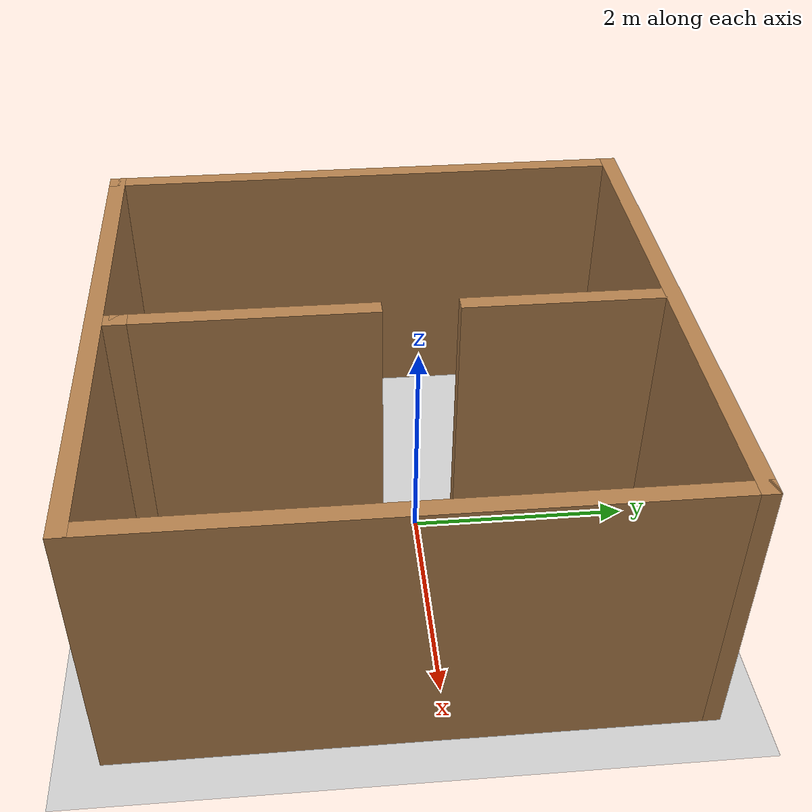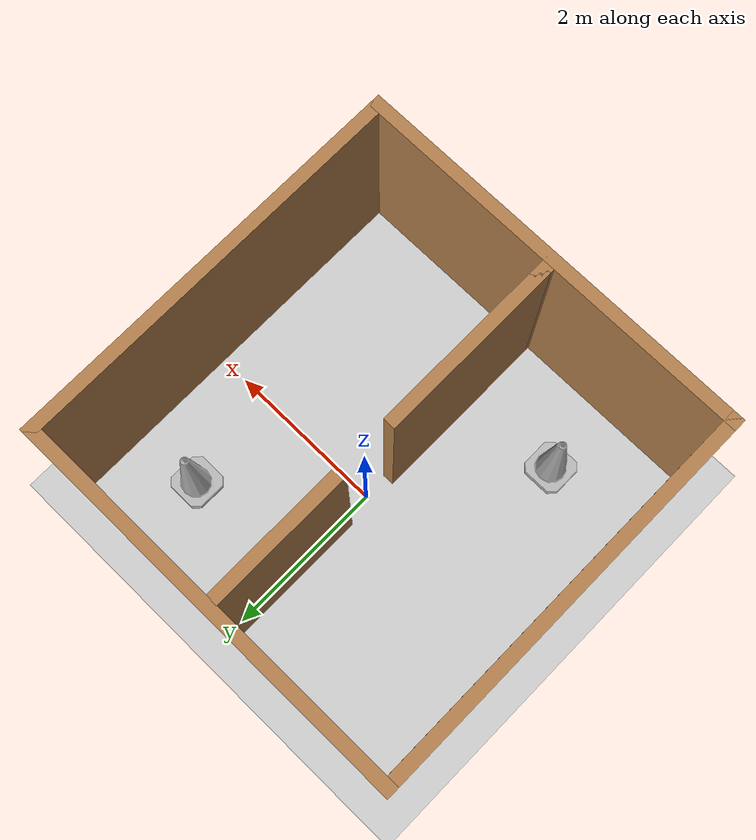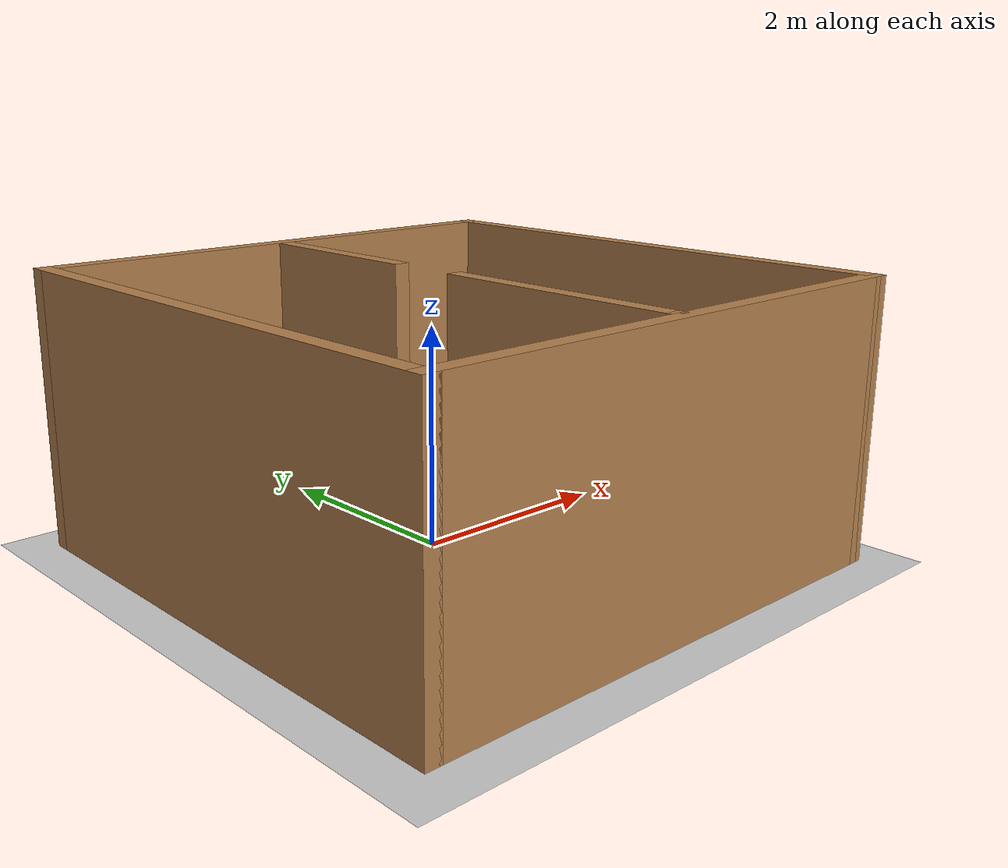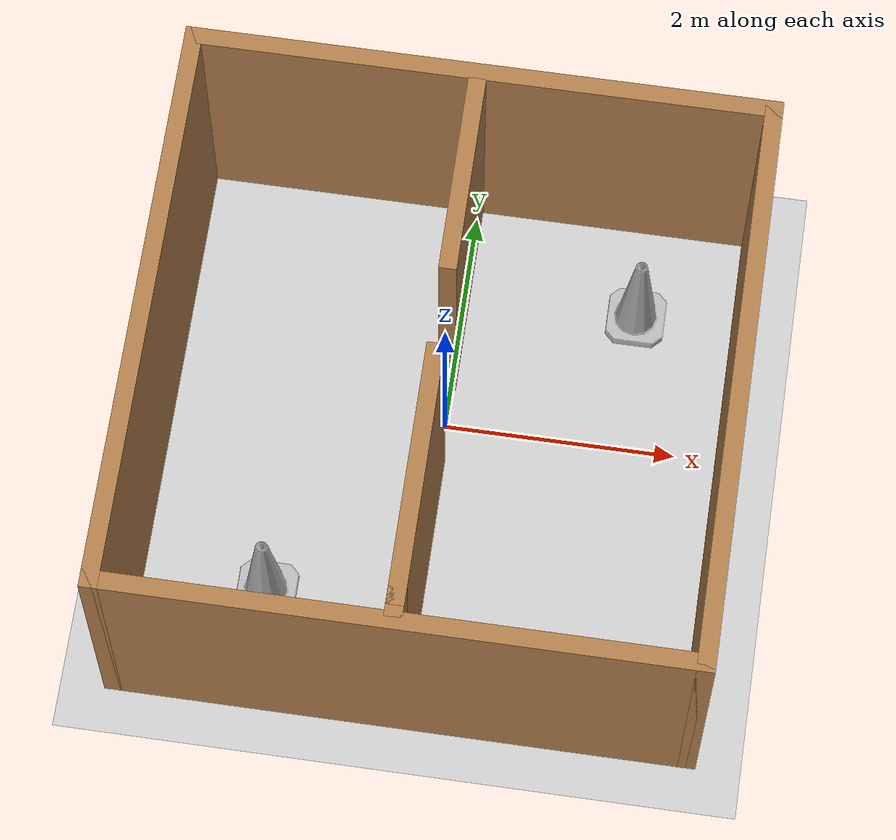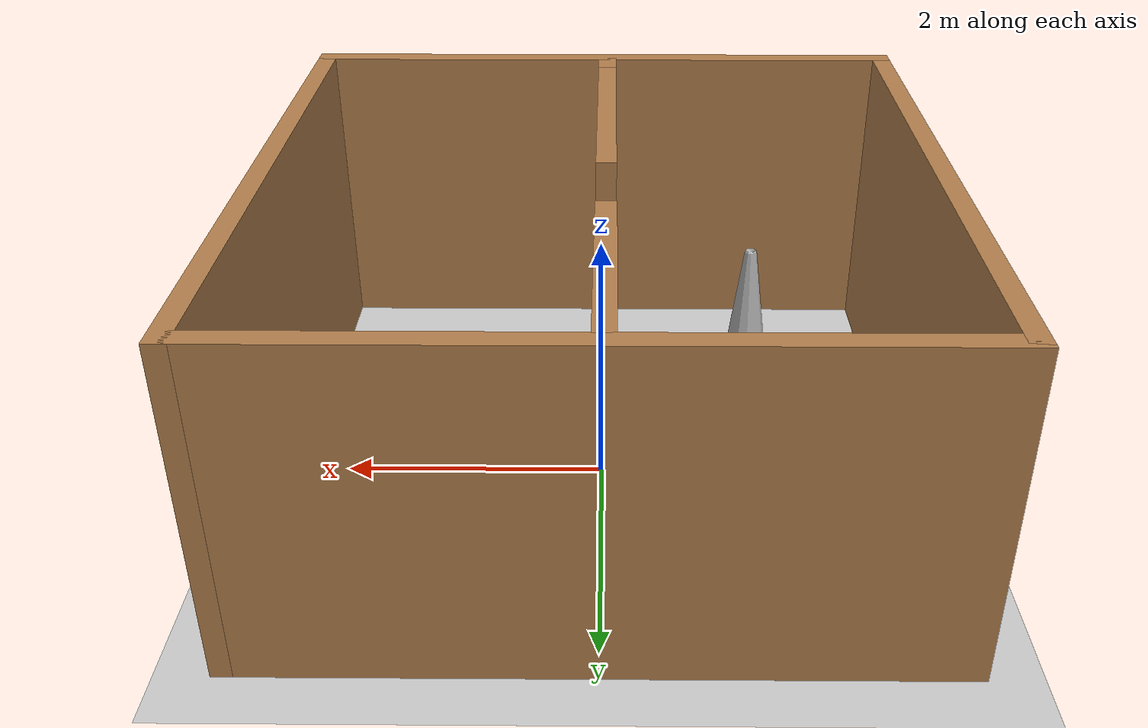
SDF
<sdf version="1.7">
 <world name="default">
  <scene><ambient>0.4 0.4 0.4 1</ambient><background>0.7 0.7 0.7 1</background><shadows>1</shadows></scene>
  <light name="sun" type="directional">
   <pose>0 0 10 0 -0 0</pose>
   <diffuse>0.8 0.8 0.8 1</diffuse>
   <specular>0.2 0.2 0.2 1</specular>
   <attenuation>
    <range>1000</range>
    <constant>0.9</constant>
    <linear>0.01</linear>
    <quadratic>0.001</quadratic>
   </attenuation>
   <direction>-0.5 0.1 -0.9</direction>
   <spot><inner_angle>0</inner_angle><outer_angle>0</outer_angle><falloff>0</falloff></spot>
  </light>
  <model name="ground_plane">
   <static>1</static>
   <link name="link">
    <collision name="collision">
     <geometry><plane><normal>0 0 1</normal><size>100 100</size></plane></geometry>
     <surface>
      <contact><collide_bitmask>65535</collide_bitmask></contact>
      <friction><ode><mu>100</mu><mu2>50</mu2></ode></friction>
     </surface>
    </collision>
    <visual name="visual">
     <cast_shadows>0</cast_shadows>
     <geometry><plane><normal>0 0 1</normal><size>100 100</size></plane></geometry>
     <material>
      <script><uri>file://media/materials/scripts/gazebo.material</uri><name>Gazebo/Grey</name></script>
     </material>
    </visual>
   </link>
  </model>
  <physics type="ode">
   <real_time_update_rate>1000</real_time_update_rate>
   <max_step_size>0.001</max_step_size>
   <real_time_factor>1</real_time_factor>
   <ode>
    <solver>
     <type>quick</type>
     <iters>150</iters>
     <precon_iters>0</precon_iters>
     <sor>1.4</sor>
     <use_dynamic_moi_rescaling>1</use_dynamic_moi_rescaling>
    </solver>
    <constraints>
     <cfm>1e-05</cfm>
     <erp>0.2</erp>
     <contact_max_correcting_vel>2000</contact_max_correcting_vel>
     <contact_surface_layer>0.01</contact_surface_layer>
    </constraints>
   </ode>
  </physics>
  <gravity>0 0 -9.8</gravity>
  <magnetic_field>6e-06 2.3e-05 -4.2e-05</magnetic_field>
  <atmosphere type="adiabatic"/>
  <spherical_coordinates>
   <surface_model>EARTH_WGS84</surface_model>
   <latitude_deg>0</latitude_deg>
   <longitude_deg>0</longitude_deg>
   <elevation>0</elevation>
   <heading_deg>0</heading_deg>
  </spherical_coordinates>
  <model name="Deneme_Model">
   <pose>0.002692 -0.107682 0 0 -0 0</pose>
   <link name="Wall_1">
    <collision name="Wall_1_Collision">
     <geometry><box><size>5 0.15 2.5</size></box></geometry>
     <pose>0 0 1.25 0 -0 0</pose>
    </collision>
    <visual name="Wall_1_Visual">
     <pose>0 0 1.25 0 -0 0</pose>
     <geometry><box><size>5 0.15 2.5</size></box></geometry>
     <material>
      <script><uri>file://media/materials/scripts/gazebo.material</uri><name>Gazebo/Wood</name></script>
      <ambient>1 1 1 1</ambient>
     </material>
     <meta><layer>0</layer></meta>
    </visual>
    <pose>0 -2.5825 0 0 -0 0</pose>
   </link>
   <link name="Wall_14">
    <collision name="Wall_14_Collision">
     <geometry><box><size>2.25 0.15 2.5</size></box></geometry>
     <pose>0 0 1.25 0 -0 0</pose>
    </collision>
    <visual name="Wall_14_Visual">
     <pose>0 0 1.25 0 -0 0</pose>
     <geometry><box><size>2.25 0.15 2.5</size></box></geometry>
     <material>
      <script><uri>file://media/materials/scripts/gazebo.material</uri><name>Gazebo/Wood</name></script>
      <ambient>1 1 1 1</ambient>
     </material>
     <meta><layer>0</layer></meta>
    </visual>
    <pose>-0.033 -1.3325 0 0 -0 -1.5708</pose>
   </link>
   <link name="Wall_15">
    <collision name="Wall_15_Collision">
     <geometry><box><size>0.25 0.15 2.5</size></box></geometry>
     <pose>0 0 1.25 0 -0 0</pose>
    </collision>
    <visual name="Wall_15_Visual">
     <pose>0 0 1.25 0 -0 0</pose>
     <geometry><box><size>0.25 0.15 2.5</size></box></geometry>
     <material>
      <script><uri>file://media/materials/scripts/gazebo.material</uri><name>Gazebo/Wood</name></script>
      <ambient>1 1 1 1</ambient>
     </material>
     <meta><layer>0</layer></meta>
    </visual>
    <pose>-0.033 -2.4325 0 0 -0 -1.5708</pose>
   </link>
   <link name="Wall_2">
    <collision name="Wall_2_Collision">
     <geometry><box><size>5 0.15 2.5</size></box></geometry>
     <pose>0 0 1.25 0 -0 0</pose>
    </collision>
    <visual name="Wall_2_Visual">
     <pose>0 0 1.25 0 -0 0</pose>
     <geometry><box><size>5 0.15 2.5</size></box></geometry>
     <material>
      <script><uri>file://media/materials/scripts/gazebo.material</uri><name>Gazebo/Wood</name></script>
      <ambient>1 1 1 1</ambient>
     </material>
     <meta><layer>0</layer></meta>
    </visual>
    <pose>2.425 -0.1575 0 0 -0 1.5708</pose>
   </link>
   <link name="Wall_3">
    <collision name="Wall_3_Collision">
     <geometry><box><size>5 0.15 2.5</size></box></geometry>
     <pose>0 0 1.25 0 -0 0</pose>
    </collision>
    <visual name="Wall_3_Visual">
     <pose>0 0 1.25 0 -0 0</pose>
     <geometry><box><size>5 0.15 2.5</size></box></geometry>
     <material>
      <script><uri>file://media/materials/scripts/gazebo.material</uri><name>Gazebo/Wood</name></script>
      <ambient>1 1 1 1</ambient>
     </material>
     <meta><layer>0</layer></meta>
    </visual>
    <pose>0 2.2675 0 0 -0 3.14159</pose>
   </link>
   <link name="Wall_4">
    <collision name="Wall_4_Collision">
     <geometry><box><size>5 0.15 2.5</size></box></geometry>
     <pose>0 0 1.25 0 -0 0</pose>
    </collision>
    <visual name="Wall_4_Visual">
     <pose>0 0 1.25 0 -0 0</pose>
     <geometry><box><size>5 0.15 2.5</size></box></geometry>
     <material>
      <script><uri>file://media/materials/scripts/gazebo.material</uri><name>Gazebo/Wood</name></script>
      <ambient>1 1 1 1</ambient>
     </material>
     <meta><layer>0</layer></meta>
    </visual>
    <pose>-2.425 -0.1575 0 0 -0 -1.5708</pose>
   </link>
   <link name="Wall_6">
    <collision name="Wall_6_Collision">
     <geometry><box><size>1.75 0.15 2.5</size></box></geometry>
     <pose>0 0 1.25 0 -0 0</pose>
    </collision>
    <visual name="Wall_6_Visual">
     <pose>0 0 1.25 0 -0 0</pose>
     <geometry><box><size>1.75 0.15 2.5</size></box></geometry>
     <material>
      <script><uri>file://media/materials/scripts/gazebo.material</uri><name>Gazebo/Wood</name></script>
      <ambient>1 1 1 1</ambient>
     </material>
     <meta><layer>0</layer></meta>
    </visual>
    <pose>-0.035 1.3275 0 0 -0 -1.5708</pose>
   </link>
   <static>1</static>
  </model>
  <model name="Construction Cone">
   <link name="link">
    <collision name="collision">
     <geometry>
      <mesh><scale>10 10 10</scale><uri>model://construction_cone/meshes/construction_cone.dae</uri></mesh>
     </geometry>
    </collision>
    <visual name="visual">
     <geometry>
      <mesh><scale>10 10 10</scale><uri>model://construction_cone/meshes/construction_cone.dae</uri></mesh>
     </geometry>
    </visual>
    <inertial>
     <inertia><ixx>1</ixx><ixy>0</ixy><ixz>0</ixz><iyy>1</iyy><iyz>0</iyz><izz>1</izz></inertia>
     <mass>1</mass>
    </inertial>
   </link>
   <pose>1.51277 1.2448 -0 -1e-06 1e-06 0</pose>
  </model>
  <model name="Construction Cone_0">
   <link name="link">
    <collision name="collision">
     <geometry>
      <mesh><scale>10 10 10</scale><uri>model://construction_cone/meshes/construction_cone.dae</uri></mesh>
     </geometry>
    </collision>
    <visual name="visual">
     <geometry>
      <mesh><scale>10 10 10</scale><uri>model://construction_cone/meshes/construction_cone.dae</uri></mesh>
     </geometry>
    </visual>
    <inertial>
     <inertia><ixx>1</ixx><ixy>0</ixy><ixz>0</ixz><iyy>1</iyy><iyz>0</iyz><izz>1</izz></inertia>
     <mass>1</mass>
    </inertial>
   </link>
   <pose>-1.28275 -1.72127 -0 0 -0 0</pose>
  </model>
 </world>
</sdf>
